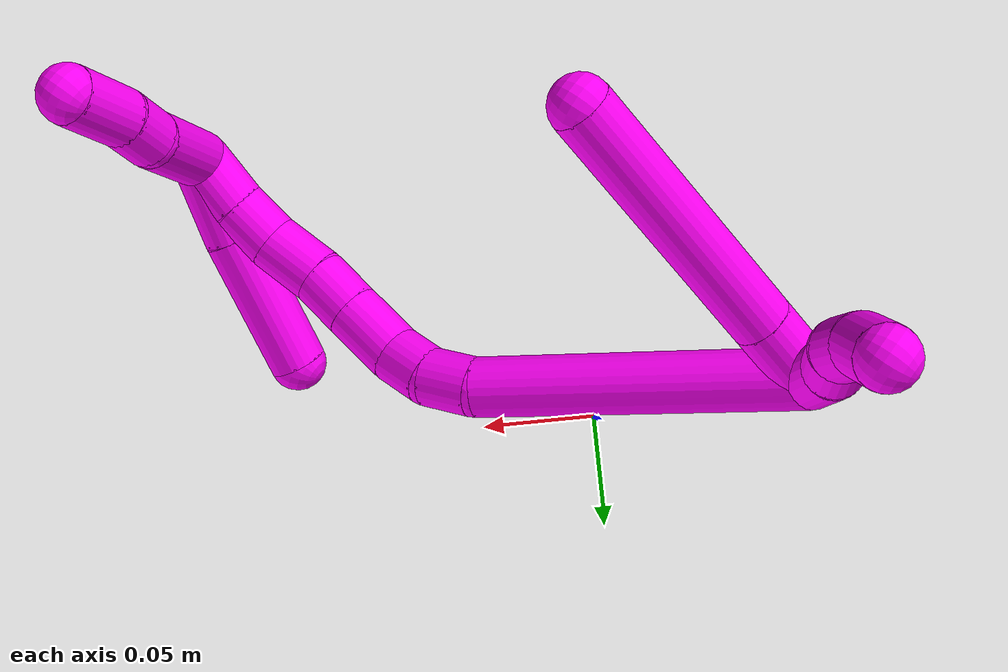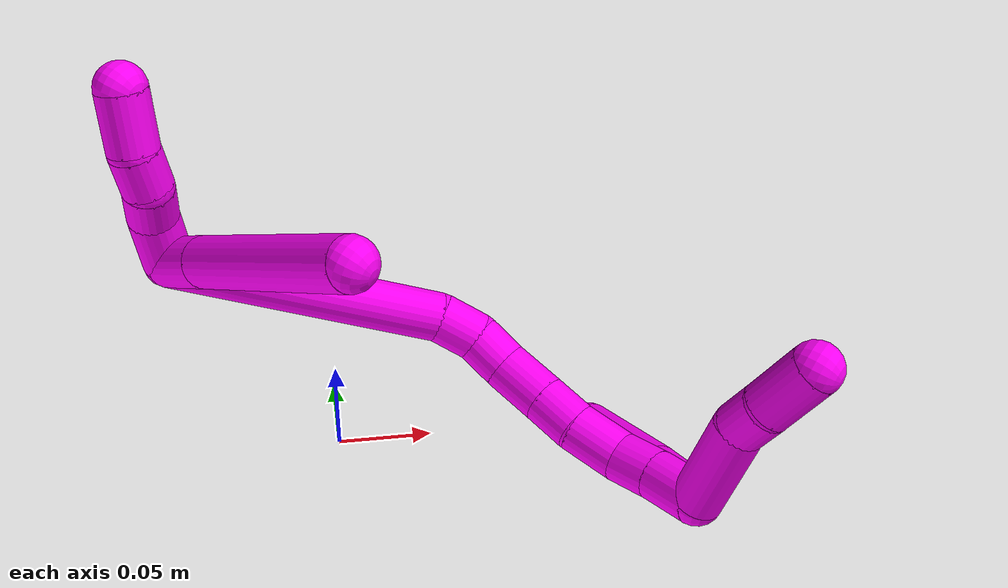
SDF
<sdf version="1.7">
 <world name="default">
  <model name="10">
   <static>0</static>
   <link name="10">
    <collision name="collision-cylinder-e_1_2_8">
     <pose>0.010435 -0.000621 0.013447 0.046112 0.659453 0.015783</pose>
     <geometry><cylinder><radius>0.0125</radius><length>0.034064</length></cylinder></geometry>
     <surface>
      <friction><ode><mu>1.16</mu><mu2>1.16</mu2><slip1>0</slip1><slip2>0</slip2></ode></friction>
      <contact><ode><kp>1e+06</kp><kd>1</kd><max_vel>0</max_vel><min_depth>0.001</min_depth></ode></contact>
     </surface>
    </collision>
    <visual name="visual-cylinder-e_1_2_8">
     <pose>0.010435 -0.000621 0.013447 0.046112 0.659453 0.015783</pose>
     <geometry><cylinder><radius>0.0125</radius><length>0.034064</length></cylinder></geometry>
     <material><ambient>1 0 0.964706 1</ambient></material>
    </visual>
    <collision name="collision-cylinder-e_2_8_6">
     <pose>0.056279 -0.003113 0.072752 0.040793 0.657104 0.013908</pose>
     <geometry><cylinder><radius>0.0125</radius><length>0.115936</length></cylinder></geometry>
     <surface>
      <friction><ode><mu>1.16</mu><mu2>1.16</mu2><slip1>0</slip1><slip2>0</slip2></ode></friction>
      <contact><ode><kp>1e+06</kp><kd>1</kd><max_vel>0</max_vel><min_depth>0.001</min_depth></ode></contact>
     </surface>
    </collision>
    <visual name="visual-cylinder-e_2_8_6">
     <pose>0.056279 -0.003113 0.072752 0.040793 0.657104 0.013908</pose>
     <geometry><cylinder><radius>0.0125</radius><length>0.115936</length></cylinder></geometry>
     <material><ambient>1 0 0.964706 1</ambient></material>
    </visual>
    <collision name="collision-cylinder-e_1_2_9">
     <pose>0.014275 -0.002274 -0.002956 2.48587 1.31522 2.31185</pose>
     <geometry><cylinder><radius>0.0125</radius><length>0.029508</length></cylinder></geometry>
     <surface>
      <friction><ode><mu>1.16</mu><mu2>1.16</mu2><slip1>0</slip1><slip2>0</slip2></ode></friction>
      <contact><ode><kp>1e+06</kp><kd>1</kd><max_vel>0</max_vel><min_depth>0.001</min_depth></ode></contact>
     </surface>
    </collision>
    <visual name="visual-cylinder-e_1_2_9">
     <pose>0.014275 -0.002274 -0.002956 2.48587 1.31522 2.31185</pose>
     <geometry><cylinder><radius>0.0125</radius><length>0.029508</length></cylinder></geometry>
     <material><ambient>1 0 0.964706 1</ambient></material>
    </visual>
    <collision name="collision-cylinder-e_2_9_10">
     <pose>0.038663 -0.0057 -0.00547 1.20397 1.44947 1.09311</pose>
     <geometry><cylinder><radius>0.0125</radius><length>0.020378</length></cylinder></geometry>
     <surface>
      <friction><ode><mu>1.16</mu><mu2>1.16</mu2><slip1>0</slip1><slip2>0</slip2></ode></friction>
      <contact><ode><kp>1e+06</kp><kd>1</kd><max_vel>0</max_vel><min_depth>0.001</min_depth></ode></contact>
     </surface>
    </collision>
    <visual name="visual-cylinder-e_2_9_10">
     <pose>0.038663 -0.0057 -0.00547 1.20397 1.44947 1.09311</pose>
     <geometry><cylinder><radius>0.0125</radius><length>0.020378</length></cylinder></geometry>
     <material><ambient>1 0 0.964706 1</ambient></material>
    </visual>
    <collision name="collision-cylinder-e_3_10_11">
     <pose>0.05862 -0.008508 -0.007915 2.62058 1.24467 2.43011</pose>
     <geometry><cylinder><radius>0.0125</radius><length>0.020781</length></cylinder></geometry>
     <surface>
      <friction><ode><mu>1.16</mu><mu2>1.16</mu2><slip1>0</slip1><slip2>0</slip2></ode></friction>
      <contact><ode><kp>1e+06</kp><kd>1</kd><max_vel>0</max_vel><min_depth>0.001</min_depth></ode></contact>
     </surface>
    </collision>
    <visual name="visual-cylinder-e_3_10_11">
     <pose>0.05862 -0.008508 -0.007915 2.62058 1.24467 2.43011</pose>
     <geometry><cylinder><radius>0.0125</radius><length>0.020781</length></cylinder></geometry>
     <material><ambient>1 0 0.964706 1</ambient></material>
    </visual>
    <collision name="collision-cylinder-e_4_11_5">
     <pose>0.080947 -0.015923 -0.015911 2.29648 1.01825 1.78542</pose>
     <geometry><cylinder><radius>0.0125</radius><length>0.029333</length></cylinder></geometry>
     <surface>
      <friction><ode><mu>1.16</mu><mu2>1.16</mu2><slip1>0</slip1><slip2>0</slip2></ode></friction>
      <contact><ode><kp>1e+06</kp><kd>1</kd><max_vel>0</max_vel><min_depth>0.001</min_depth></ode></contact>
     </surface>
    </collision>
    <visual name="visual-cylinder-e_4_11_5">
     <pose>0.080947 -0.015923 -0.015911 2.29648 1.01825 1.78542</pose>
     <geometry><cylinder><radius>0.0125</radius><length>0.029333</length></cylinder></geometry>
     <material><ambient>1 0 0.964706 1</ambient></material>
    </visual>
    <collision name="collision-cylinder-e_1_2_12">
     <pose>-0.02184 -0.033654 0.054866 0.550205 -0.327128 -0.0931</pose>
     <geometry><cylinder><radius>0.0125</radius><length>0.13594</length></cylinder></geometry>
     <surface>
      <friction><ode><mu>1.16</mu><mu2>1.16</mu2><slip1>0</slip1><slip2>0</slip2></ode></friction>
      <contact><ode><kp>1e+06</kp><kd>1</kd><max_vel>0</max_vel><min_depth>0.001</min_depth></ode></contact>
     </surface>
    </collision>
    <visual name="visual-cylinder-e_1_2_12">
     <pose>-0.02184 -0.033654 0.054866 0.550205 -0.327128 -0.0931</pose>
     <geometry><cylinder><radius>0.0125</radius><length>0.13594</length></cylinder></geometry>
     <material><ambient>1 0 0.964706 1</ambient></material>
    </visual>
    <collision name="collision-cylinder-e_2_12_13">
     <pose>-0.047844 -0.069684 0.119402 0.240932 -0.396058 -0.048571</pose>
     <geometry><cylinder><radius>0.0125</radius><length>0.021584</length></cylinder></geometry>
     <surface>
      <friction><ode><mu>1.16</mu><mu2>1.16</mu2><slip1>0</slip1><slip2>0</slip2></ode></friction>
      <contact><ode><kp>1e+06</kp><kd>1</kd><max_vel>0</max_vel><min_depth>0.001</min_depth></ode></contact>
     </surface>
    </collision>
    <visual name="visual-cylinder-e_2_12_13">
     <pose>-0.047844 -0.069684 0.119402 0.240932 -0.396058 -0.048571</pose>
     <geometry><cylinder><radius>0.0125</radius><length>0.021584</length></cylinder></geometry>
     <material><ambient>1 0 0.964706 1</ambient></material>
    </visual>
    <collision name="collision-cylinder-e_3_13_14">
     <pose>-0.055679 -0.070993 0.138471 -0.112973 -0.370139 0.021172</pose>
     <geometry><cylinder><radius>0.0125</radius><length>0.020295</length></cylinder></geometry>
     <surface>
      <friction><ode><mu>1.16</mu><mu2>1.16</mu2><slip1>0</slip1><slip2>0</slip2></ode></friction>
      <contact><ode><kp>1e+06</kp><kd>1</kd><max_vel>0</max_vel><min_depth>0.001</min_depth></ode></contact>
     </surface>
    </collision>
    <visual name="visual-cylinder-e_3_13_14">
     <pose>-0.055679 -0.070993 0.138471 -0.112973 -0.370139 0.021172</pose>
     <geometry><cylinder><radius>0.0125</radius><length>0.020295</length></cylinder></geometry>
     <material><ambient>1 0 0.964706 1</ambient></material>
    </visual>
    <collision name="collision-cylinder-e_4_14_15">
     <pose>-0.059752 -0.067542 0.161297 -0.175842 -0.029544 0.002604</pose>
     <geometry><cylinder><radius>0.0125</radius><length>0.027284</length></cylinder></geometry>
     <surface>
      <friction><ode><mu>1.16</mu><mu2>1.16</mu2><slip1>0</slip1><slip2>0</slip2></ode></friction>
      <contact><ode><kp>1e+06</kp><kd>1</kd><max_vel>0</max_vel><min_depth>0.001</min_depth></ode></contact>
     </surface>
    </collision>
    <visual name="visual-cylinder-e_4_14_15">
     <pose>-0.059752 -0.067542 0.161297 -0.175842 -0.029544 0.002604</pose>
     <geometry><cylinder><radius>0.0125</radius><length>0.027284</length></cylinder></geometry>
     <material><ambient>1 0 0.964706 1</ambient></material>
    </visual>
    <collision name="collision-cylinder-e_5_15_16">
     <pose>-0.060382 -0.063125 0.185345 -0.188891 -0.020936 0.001983</pose>
     <geometry><cylinder><radius>0.0125</radius><length>0.021636</length></cylinder></geometry>
     <surface>
      <friction><ode><mu>1.16</mu><mu2>1.16</mu2><slip1>0</slip1><slip2>0</slip2></ode></friction>
      <contact><ode><kp>1e+06</kp><kd>1</kd><max_vel>0</max_vel><min_depth>0.001</min_depth></ode></contact>
     </surface>
    </collision>
    <visual name="visual-cylinder-e_5_15_16">
     <pose>-0.060382 -0.063125 0.185345 -0.188891 -0.020936 0.001983</pose>
     <geometry><cylinder><radius>0.0125</radius><length>0.021636</length></cylinder></geometry>
     <material><ambient>1 0 0.964706 1</ambient></material>
    </visual>
    <collision name="collision-cylinder-e_6_16_17">
     <pose>-0.060982 -0.060456 0.209082 -0.04864 -0.028496 0.000693</pose>
     <geometry><cylinder><radius>0.0125</radius><length>0.026269</length></cylinder></geometry>
     <surface>
      <friction><ode><mu>1.16</mu><mu2>1.16</mu2><slip1>0</slip1><slip2>0</slip2></ode></friction>
      <contact><ode><kp>1e+06</kp><kd>1</kd><max_vel>0</max_vel><min_depth>0.001</min_depth></ode></contact>
     </surface>
    </collision>
    <visual name="visual-cylinder-e_6_16_17">
     <pose>-0.060982 -0.060456 0.209082 -0.04864 -0.028496 0.000693</pose>
     <geometry><cylinder><radius>0.0125</radius><length>0.026269</length></cylinder></geometry>
     <material><ambient>1 0 0.964706 1</ambient></material>
    </visual>
    <collision name="collision-cylinder-e_7_17_18">
     <pose>-0.058164 -0.059056 0.232396 -0.074522 0.302597 -0.011367</pose>
     <geometry><cylinder><radius>0.0125</radius><length>0.02143</length></cylinder></geometry>
     <surface>
      <friction><ode><mu>1.16</mu><mu2>1.16</mu2><slip1>0</slip1><slip2>0</slip2></ode></friction>
      <contact><ode><kp>1e+06</kp><kd>1</kd><max_vel>0</max_vel><min_depth>0.001</min_depth></ode></contact>
     </surface>
    </collision>
    <visual name="visual-cylinder-e_7_17_18">
     <pose>-0.058164 -0.059056 0.232396 -0.074522 0.302597 -0.011367</pose>
     <geometry><cylinder><radius>0.0125</radius><length>0.02143</length></cylinder></geometry>
     <material><ambient>1 0 0.964706 1</ambient></material>
    </visual>
    <collision name="collision-cylinder-e_8_18_1">
     <pose>-0.050434 -0.056115 0.254344 -0.183488 0.36289 -0.033755</pose>
     <geometry><cylinder><radius>0.0125</radius><length>0.025562</length></cylinder></geometry>
     <surface>
      <friction><ode><mu>1.16</mu><mu2>1.16</mu2><slip1>0</slip1><slip2>0</slip2></ode></friction>
      <contact><ode><kp>1e+06</kp><kd>1</kd><max_vel>0</max_vel><min_depth>0.001</min_depth></ode></contact>
     </surface>
    </collision>
    <visual name="visual-cylinder-e_8_18_1">
     <pose>-0.050434 -0.056115 0.254344 -0.183488 0.36289 -0.033755</pose>
     <geometry><cylinder><radius>0.0125</radius><length>0.025562</length></cylinder></geometry>
     <material><ambient>1 0 0.964706 1</ambient></material>
    </visual>
    <collision name="collision-cylinder-e_1_1_19">
     <pose>-0.023972 -0.064554 0.26839 1.35767 1.11068 0.928193</pose>
     <geometry><cylinder><radius>0.0125</radius><length>0.048939</length></cylinder></geometry>
     <surface>
      <friction><ode><mu>1.16</mu><mu2>1.16</mu2><slip1>0</slip1><slip2>0</slip2></ode></friction>
      <contact><ode><kp>1e+06</kp><kd>1</kd><max_vel>0</max_vel><min_depth>0.001</min_depth></ode></contact>
     </surface>
    </collision>
    <visual name="visual-cylinder-e_1_1_19">
     <pose>-0.023972 -0.064554 0.26839 1.35767 1.11068 0.928193</pose>
     <geometry><cylinder><radius>0.0125</radius><length>0.048939</length></cylinder></geometry>
     <material><ambient>1 0 0.964706 1</ambient></material>
    </visual>
    <collision name="collision-cylinder-e_2_19_20">
     <pose>0.006738 -0.078262 0.274412 0.692306 1.06744 0.419981</pose>
     <geometry><cylinder><radius>0.0125</radius><length>0.020057</length></cylinder></geometry>
     <surface>
      <friction><ode><mu>1.16</mu><mu2>1.16</mu2><slip1>0</slip1><slip2>0</slip2></ode></friction>
      <contact><ode><kp>1e+06</kp><kd>1</kd><max_vel>0</max_vel><min_depth>0.001</min_depth></ode></contact>
     </surface>
    </collision>
    <visual name="visual-cylinder-e_2_19_20">
     <pose>0.006738 -0.078262 0.274412 0.692306 1.06744 0.419981</pose>
     <geometry><cylinder><radius>0.0125</radius><length>0.020057</length></cylinder></geometry>
     <material><ambient>1 0 0.964706 1</ambient></material>
    </visual>
    <collision name="collision-cylinder-e_3_20_4">
     <pose>0.028022 -0.0884 0.283997 0.877238 0.937949 0.466699</pose>
     <geometry><cylinder><radius>0.0125</radius><length>0.031004</length></cylinder></geometry>
     <surface>
      <friction><ode><mu>1.16</mu><mu2>1.16</mu2><slip1>0</slip1><slip2>0</slip2></ode></friction>
      <contact><ode><kp>1e+06</kp><kd>1</kd><max_vel>0</max_vel><min_depth>0.001</min_depth></ode></contact>
     </surface>
    </collision>
    <visual name="visual-cylinder-e_3_20_4">
     <pose>0.028022 -0.0884 0.283997 0.877238 0.937949 0.466699</pose>
     <geometry><cylinder><radius>0.0125</radius><length>0.031004</length></cylinder></geometry>
     <material><ambient>1 0 0.964706 1</ambient></material>
    </visual>
    <collision name="collision-cylinder-e_1_1_21">
     <pose>-0.057026 -0.060301 0.252633 2.69972 -0.64194 -1.95332</pose>
     <geometry><cylinder><radius>0.0125</radius><length>0.037176</length></cylinder></geometry>
     <surface>
      <friction><ode><mu>1.16</mu><mu2>1.16</mu2><slip1>0</slip1><slip2>0</slip2></ode></friction>
      <contact><ode><kp>1e+06</kp><kd>1</kd><max_vel>0</max_vel><min_depth>0.001</min_depth></ode></contact>
     </surface>
    </collision>
    <visual name="visual-cylinder-e_1_1_21">
     <pose>-0.057026 -0.060301 0.252633 2.69972 -0.64194 -1.95332</pose>
     <geometry><cylinder><radius>0.0125</radius><length>0.037176</length></cylinder></geometry>
     <material><ambient>1 0 0.964706 1</ambient></material>
    </visual>
    <collision name="collision-cylinder-e_2_21_3">
     <pose>-0.085889 -0.075467 0.214787 2.79531 -0.599883 -2.11226</pose>
     <geometry><cylinder><radius>0.0125</radius><length>0.062824</length></cylinder></geometry>
     <surface>
      <friction><ode><mu>1.16</mu><mu2>1.16</mu2><slip1>0</slip1><slip2>0</slip2></ode></friction>
      <contact><ode><kp>1e+06</kp><kd>1</kd><max_vel>0</max_vel><min_depth>0.001</min_depth></ode></contact>
     </surface>
    </collision>
    <visual name="visual-cylinder-e_2_21_3">
     <pose>-0.085889 -0.075467 0.214787 2.79531 -0.599883 -2.11226</pose>
     <geometry><cylinder><radius>0.0125</radius><length>0.062824</length></cylinder></geometry>
     <material><ambient>1 0 0.964706 1</ambient></material>
    </visual>
    <collision name="collision-sphere-3">
     <pose>-0.103623 -0.084267 0.190399 0 -0 0</pose>
     <geometry><sphere><radius>0.0125</radius></sphere></geometry>
     <surface>
      <friction><ode><mu>1.16</mu><mu2>1.16</mu2><slip1>0</slip1><slip2>0</slip2></ode></friction>
      <contact><ode><kp>1e+06</kp><kd>1</kd><max_vel>0</max_vel><min_depth>0.001</min_depth></ode></contact>
     </surface>
    </collision>
    <visual name="visual-sphere-3">
     <pose>-0.103623 -0.084267 0.190399 0 -0 0</pose>
     <geometry><sphere><radius>0.0125</radius></sphere></geometry>
     <material><ambient>1 0 0.964706 1</ambient></material>
    </visual>
    <collision name="collision-sphere-21">
     <pose>-0.068156 -0.066668 0.239175 0 -0 0</pose>
     <geometry><sphere><radius>0.0125</radius></sphere></geometry>
     <surface>
      <friction><ode><mu>1.16</mu><mu2>1.16</mu2><slip1>0</slip1><slip2>0</slip2></ode></friction>
      <contact><ode><kp>1e+06</kp><kd>1</kd><max_vel>0</max_vel><min_depth>0.001</min_depth></ode></contact>
     </surface>
    </collision>
    <visual name="visual-sphere-21">
     <pose>-0.068156 -0.066668 0.239175 0 -0 0</pose>
     <geometry><sphere><radius>0.0125</radius></sphere></geometry>
     <material><ambient>1 0 0.964706 1</ambient></material>
    </visual>
    <collision name="collision-sphere-4">
     <pose>0.040522 -0.09545 0.289858 0 -0 0</pose>
     <geometry><sphere><radius>0.0125</radius></sphere></geometry>
     <surface>
      <friction><ode><mu>1.16</mu><mu2>1.16</mu2><slip1>0</slip1><slip2>0</slip2></ode></friction>
      <contact><ode><kp>1e+06</kp><kd>1</kd><max_vel>0</max_vel><min_depth>0.001</min_depth></ode></contact>
     </surface>
    </collision>
    <visual name="visual-sphere-4">
     <pose>0.040522 -0.09545 0.289858 0 -0 0</pose>
     <geometry><sphere><radius>0.0125</radius></sphere></geometry>
     <material><ambient>1 0 0.964706 1</ambient></material>
    </visual>
    <collision name="collision-sphere-20">
     <pose>0.015523 -0.08135 0.278136 0 -0 0</pose>
     <geometry><sphere><radius>0.0125</radius></sphere></geometry>
     <surface>
      <friction><ode><mu>1.16</mu><mu2>1.16</mu2><slip1>0</slip1><slip2>0</slip2></ode></friction>
      <contact><ode><kp>1e+06</kp><kd>1</kd><max_vel>0</max_vel><min_depth>0.001</min_depth></ode></contact>
     </surface>
    </collision>
    <visual name="visual-sphere-20">
     <pose>0.015523 -0.08135 0.278136 0 -0 0</pose>
     <geometry><sphere><radius>0.0125</radius></sphere></geometry>
     <material><ambient>1 0 0.964706 1</ambient></material>
    </visual>
    <collision name="collision-sphere-11">
     <pose>0.068463 -0.010165 -0.010802 0 -0 0</pose>
     <geometry><sphere><radius>0.0125</radius></sphere></geometry>
     <surface>
      <friction><ode><mu>1.16</mu><mu2>1.16</mu2><slip1>0</slip1><slip2>0</slip2></ode></friction>
      <contact><ode><kp>1e+06</kp><kd>1</kd><max_vel>0</max_vel><min_depth>0.001</min_depth></ode></contact>
     </surface>
    </collision>
    <visual name="visual-sphere-11">
     <pose>0.068463 -0.010165 -0.010802 0 -0 0</pose>
     <geometry><sphere><radius>0.0125</radius></sphere></geometry>
     <material><ambient>1 0 0.964706 1</ambient></material>
    </visual>
    <collision name="collision-sphere-10">
     <pose>0.048777 -0.006851 -0.005028 0 -0 0</pose>
     <geometry><sphere><radius>0.0125</radius></sphere></geometry>
     <surface>
      <friction><ode><mu>1.16</mu><mu2>1.16</mu2><slip1>0</slip1><slip2>0</slip2></ode></friction>
      <contact><ode><kp>1e+06</kp><kd>1</kd><max_vel>0</max_vel><min_depth>0.001</min_depth></ode></contact>
     </surface>
    </collision>
    <visual name="visual-sphere-10">
     <pose>0.048777 -0.006851 -0.005028 0 -0 0</pose>
     <geometry><sphere><radius>0.0125</radius></sphere></geometry>
     <material><ambient>1 0 0.964706 1</ambient></material>
    </visual>
    <collision name="collision-sphere-6">
     <pose>0.091687 -0.004984 0.118611 0 -0 0</pose>
     <geometry><sphere><radius>0.0125</radius></sphere></geometry>
     <surface>
      <friction><ode><mu>1.16</mu><mu2>1.16</mu2><slip1>0</slip1><slip2>0</slip2></ode></friction>
      <contact><ode><kp>1e+06</kp><kd>1</kd><max_vel>0</max_vel><min_depth>0.001</min_depth></ode></contact>
     </surface>
    </collision>
    <visual name="visual-sphere-6">
     <pose>0.091687 -0.004984 0.118611 0 -0 0</pose>
     <geometry><sphere><radius>0.0125</radius></sphere></geometry>
     <material><ambient>1 0 0.964706 1</ambient></material>
    </visual>
    <collision name="collision-sphere-9">
     <pose>0.028549 -0.004548 -0.005913 0 -0 0</pose>
     <geometry><sphere><radius>0.0125</radius></sphere></geometry>
     <surface>
      <friction><ode><mu>1.16</mu><mu2>1.16</mu2><slip1>0</slip1><slip2>0</slip2></ode></friction>
      <contact><ode><kp>1e+06</kp><kd>1</kd><max_vel>0</max_vel><min_depth>0.001</min_depth></ode></contact>
     </surface>
    </collision>
    <visual name="visual-sphere-9">
     <pose>0.028549 -0.004548 -0.005913 0 -0 0</pose>
     <geometry><sphere><radius>0.0125</radius></sphere></geometry>
     <material><ambient>1 0 0.964706 1</ambient></material>
    </visual>
    <collision name="collision-sphere-2">
     <geometry><sphere><radius>0.0125</radius></sphere></geometry>
     <surface>
      <friction><ode><mu>1.16</mu><mu2>1.16</mu2><slip1>0</slip1><slip2>0</slip2></ode></friction>
      <contact><ode><kp>1e+06</kp><kd>1</kd><max_vel>0</max_vel><min_depth>0.001</min_depth></ode></contact>
     </surface>
    </collision>
    <visual name="visual-sphere-2">
     <geometry><sphere><radius>0.0125</radius></sphere></geometry>
     <material><ambient>1 0 0.964706 1</ambient></material>
    </visual>
    <collision name="collision-sphere-19">
     <pose>-0.002047 -0.075174 0.270688 0 -0 0</pose>
     <geometry><sphere><radius>0.0125</radius></sphere></geometry>
     <surface>
      <friction><ode><mu>1.16</mu><mu2>1.16</mu2><slip1>0</slip1><slip2>0</slip2></ode></friction>
      <contact><ode><kp>1e+06</kp><kd>1</kd><max_vel>0</max_vel><min_depth>0.001</min_depth></ode></contact>
     </surface>
    </collision>
    <visual name="visual-sphere-19">
     <pose>-0.002047 -0.075174 0.270688 0 -0 0</pose>
     <geometry><sphere><radius>0.0125</radius></sphere></geometry>
     <material><ambient>1 0 0.964706 1</ambient></material>
    </visual>
    <collision name="collision-sphere-8">
     <pose>0.020871 -0.001241 0.026893 0 -0 0</pose>
     <geometry><sphere><radius>0.0125</radius></sphere></geometry>
     <surface>
      <friction><ode><mu>1.16</mu><mu2>1.16</mu2><slip1>0</slip1><slip2>0</slip2></ode></friction>
      <contact><ode><kp>1e+06</kp><kd>1</kd><max_vel>0</max_vel><min_depth>0.001</min_depth></ode></contact>
     </surface>
    </collision>
    <visual name="visual-sphere-8">
     <pose>0.020871 -0.001241 0.026893 0 -0 0</pose>
     <geometry><sphere><radius>0.0125</radius></sphere></geometry>
     <material><ambient>1 0 0.964706 1</ambient></material>
    </visual>
    <collision name="collision-sphere-5">
     <pose>0.093431 -0.021681 -0.02102 0 -0 0</pose>
     <geometry><sphere><radius>0.0125</radius></sphere></geometry>
     <surface>
      <friction><ode><mu>1.16</mu><mu2>1.16</mu2><slip1>0</slip1><slip2>0</slip2></ode></friction>
      <contact><ode><kp>1e+06</kp><kd>1</kd><max_vel>0</max_vel><min_depth>0.001</min_depth></ode></contact>
     </surface>
    </collision>
    <visual name="visual-sphere-5">
     <pose>0.093431 -0.021681 -0.02102 0 -0 0</pose>
     <geometry><sphere><radius>0.0125</radius></sphere></geometry>
     <material><ambient>1 0 0.964706 1</ambient></material>
    </visual>
    <collision name="collision-sphere-12">
     <pose>-0.043681 -0.067308 0.109732 0 -0 0</pose>
     <geometry><sphere><radius>0.0125</radius></sphere></geometry>
     <surface>
      <friction><ode><mu>1.16</mu><mu2>1.16</mu2><slip1>0</slip1><slip2>0</slip2></ode></friction>
      <contact><ode><kp>1e+06</kp><kd>1</kd><max_vel>0</max_vel><min_depth>0.001</min_depth></ode></contact>
     </surface>
    </collision>
    <visual name="visual-sphere-12">
     <pose>-0.043681 -0.067308 0.109732 0 -0 0</pose>
     <geometry><sphere><radius>0.0125</radius></sphere></geometry>
     <material><ambient>1 0 0.964706 1</ambient></material>
    </visual>
    <collision name="collision-sphere-13">
     <pose>-0.052008 -0.07206 0.129071 0 -0 0</pose>
     <geometry><sphere><radius>0.0125</radius></sphere></geometry>
     <surface>
      <friction><ode><mu>1.16</mu><mu2>1.16</mu2><slip1>0</slip1><slip2>0</slip2></ode></friction>
      <contact><ode><kp>1e+06</kp><kd>1</kd><max_vel>0</max_vel><min_depth>0.001</min_depth></ode></contact>
     </surface>
    </collision>
    <visual name="visual-sphere-13">
     <pose>-0.052008 -0.07206 0.129071 0 -0 0</pose>
     <geometry><sphere><radius>0.0125</radius></sphere></geometry>
     <material><ambient>1 0 0.964706 1</ambient></material>
    </visual>
    <collision name="collision-sphere-14">
     <pose>-0.059349 -0.069927 0.147871 0 -0 0</pose>
     <geometry><sphere><radius>0.0125</radius></sphere></geometry>
     <surface>
      <friction><ode><mu>1.16</mu><mu2>1.16</mu2><slip1>0</slip1><slip2>0</slip2></ode></friction>
      <contact><ode><kp>1e+06</kp><kd>1</kd><max_vel>0</max_vel><min_depth>0.001</min_depth></ode></contact>
     </surface>
    </collision>
    <visual name="visual-sphere-14">
     <pose>-0.059349 -0.069927 0.147871 0 -0 0</pose>
     <geometry><sphere><radius>0.0125</radius></sphere></geometry>
     <material><ambient>1 0 0.964706 1</ambient></material>
    </visual>
    <collision name="collision-sphere-15">
     <pose>-0.060155 -0.065156 0.174722 0 -0 0</pose>
     <geometry><sphere><radius>0.0125</radius></sphere></geometry>
     <surface>
      <friction><ode><mu>1.16</mu><mu2>1.16</mu2><slip1>0</slip1><slip2>0</slip2></ode></friction>
      <contact><ode><kp>1e+06</kp><kd>1</kd><max_vel>0</max_vel><min_depth>0.001</min_depth></ode></contact>
     </surface>
    </collision>
    <visual name="visual-sphere-15">
     <pose>-0.060155 -0.065156 0.174722 0 -0 0</pose>
     <geometry><sphere><radius>0.0125</radius></sphere></geometry>
     <material><ambient>1 0 0.964706 1</ambient></material>
    </visual>
    <collision name="collision-sphere-16">
     <pose>-0.060608 -0.061094 0.195968 0 -0 0</pose>
     <geometry><sphere><radius>0.0125</radius></sphere></geometry>
     <surface>
      <friction><ode><mu>1.16</mu><mu2>1.16</mu2><slip1>0</slip1><slip2>0</slip2></ode></friction>
      <contact><ode><kp>1e+06</kp><kd>1</kd><max_vel>0</max_vel><min_depth>0.001</min_depth></ode></contact>
     </surface>
    </collision>
    <visual name="visual-sphere-16">
     <pose>-0.060608 -0.061094 0.195968 0 -0 0</pose>
     <geometry><sphere><radius>0.0125</radius></sphere></geometry>
     <material><ambient>1 0 0.964706 1</ambient></material>
    </visual>
    <collision name="collision-sphere-17">
     <pose>-0.061357 -0.059818 0.222196 0 -0 0</pose>
     <geometry><sphere><radius>0.0125</radius></sphere></geometry>
     <surface>
      <friction><ode><mu>1.16</mu><mu2>1.16</mu2><slip1>0</slip1><slip2>0</slip2></ode></friction>
      <contact><ode><kp>1e+06</kp><kd>1</kd><max_vel>0</max_vel><min_depth>0.001</min_depth></ode></contact>
     </surface>
    </collision>
    <visual name="visual-sphere-17">
     <pose>-0.061357 -0.059818 0.222196 0 -0 0</pose>
     <geometry><sphere><radius>0.0125</radius></sphere></geometry>
     <material><ambient>1 0 0.964706 1</ambient></material>
    </visual>
    <collision name="collision-sphere-18">
     <pose>-0.05497 -0.058295 0.242596 0 -0 0</pose>
     <geometry><sphere><radius>0.0125</radius></sphere></geometry>
     <surface>
      <friction><ode><mu>1.16</mu><mu2>1.16</mu2><slip1>0</slip1><slip2>0</slip2></ode></friction>
      <contact><ode><kp>1e+06</kp><kd>1</kd><max_vel>0</max_vel><min_depth>0.001</min_depth></ode></contact>
     </surface>
    </collision>
    <visual name="visual-sphere-18">
     <pose>-0.05497 -0.058295 0.242596 0 -0 0</pose>
     <geometry><sphere><radius>0.0125</radius></sphere></geometry>
     <material><ambient>1 0 0.964706 1</ambient></material>
    </visual>
    <collision name="collision-sphere-1">
     <pose>-0.045897 -0.053934 0.266092 0 -0 0</pose>
     <geometry><sphere><radius>0.0125</radius></sphere></geometry>
     <surface>
      <friction><ode><mu>1.16</mu><mu2>1.16</mu2><slip1>0</slip1><slip2>0</slip2></ode></friction>
      <contact><ode><kp>1e+06</kp><kd>1</kd><max_vel>0</max_vel><min_depth>0.001</min_depth></ode></contact>
     </surface>
    </collision>
    <visual name="visual-sphere-1">
     <pose>-0.045897 -0.053934 0.266092 0 -0 0</pose>
     <geometry><sphere><radius>0.0125</radius></sphere></geometry>
     <material><ambient>1 0 0.964706 1</ambient></material>
    </visual>
    <inertial>
     <pose>-0.010946 -0.040904 0.128831 0 -0 0</pose>
     <mass>0.75</mass>
     <inertia>
      <ixx>0.000302</ixx>
      <ixy>0</ixy>
      <ixz>0</ixz>
      <iyy>0.000338</iyy>
      <iyz>0</iyz>
      <izz>0.000129</izz>
     </inertia>
    </inertial>
   </link>
   <pose>-0.076749 -0.010564 0.132698 -2.08794 -1.17656 -1.80425</pose>
  </model>
 </world>
</sdf>
